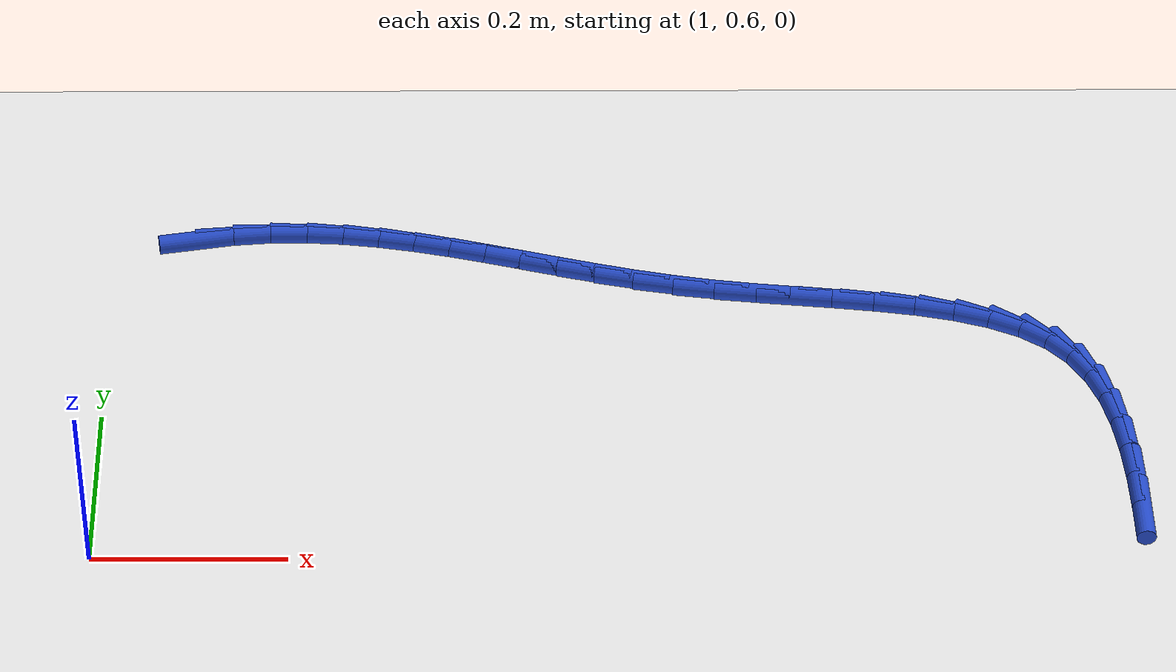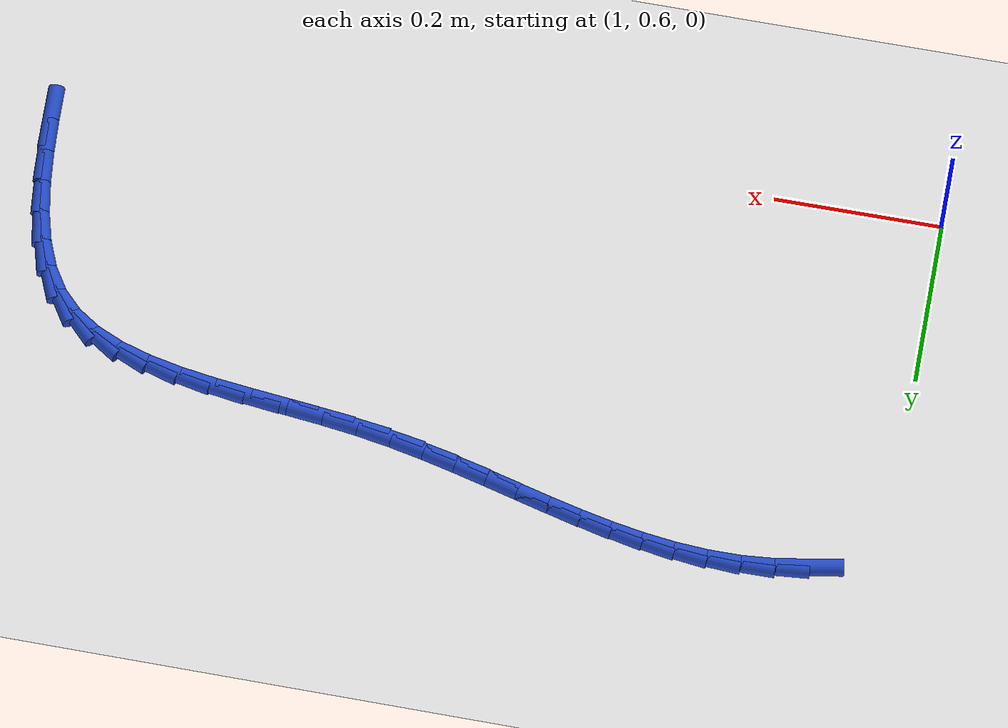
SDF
<sdf version="1.6">
 <world name="default">
  <model name="ground_plane">
   <static>1</static>
   <link name="link">
    <collision name="collision">
     <geometry><plane><normal>0 0 1</normal><size>100 100</size></plane></geometry>
     <surface><friction><ode><mu>100</mu><mu2>50</mu2></ode></friction></surface>
    </collision>
    <visual name="visual">
     <cast_shadows>0</cast_shadows>
     <geometry><plane><normal>0 0 1</normal><size>100 100</size></plane></geometry>
     <material>
      <script><uri>file://media/materials/scripts/gazebo.material</uri><name>Gazebo/WhiteGlow</name></script>
     </material>
    </visual>
   </link>
  </model>
  <model name="line">
   <link name="link_44">
    <pose>1.0845267703536634 1.0546039423712241 0.01 0 1.57 0.1686765028902553</pose>
    <collision name="collision">
     <geometry><cylinder><radius>0.01</radius><length>0.08</length></cylinder></geometry>
    </collision>
    <visual name="visual">
     <material>
      <script><name>Gazebo/Blue</name><uri>file://media/materials/scripts/gazebo.material</uri></script>
     </material>
     <geometry><cylinder><radius>0.01</radius><length>0.08</length></cylinder></geometry>
    </visual>
   </link>
   <link name="link_45">
    <pose>1.12316036006 1.061183035447751 0.01 0 1.57 0.08615382812635393</pose>
    <collision name="collision">
     <geometry><cylinder><radius>0.01</radius><length>0.08</length></cylinder></geometry>
    </collision>
    <visual name="visual">
     <material>
      <script><name>Gazebo/Blue</name><uri>file://media/materials/scripts/gazebo.material</uri></script>
     </material>
     <geometry><cylinder><radius>0.01</radius><length>0.08</length></cylinder></geometry>
    </visual>
   </link>
   <link name="link_46">
    <pose>1.16261064117979 1.0645902623882741 0.01 0 1.57 0.00502083160346573</pose>
    <collision name="collision">
     <geometry><cylinder><radius>0.01</radius><length>0.08</length></cylinder></geometry>
    </collision>
    <visual name="visual">
     <material>
      <script><name>Gazebo/Blue</name><uri>file://media/materials/scripts/gazebo.material</uri></script>
     </material>
     <geometry><cylinder><radius>0.01</radius><length>0.08</length></cylinder></geometry>
    </visual>
   </link>
   <link name="link_47">
    <pose>1.2022423870300716 1.0647892483824053 0.01 0 1.57 -0.06354605870823674</pose>
    <collision name="collision">
     <geometry><cylinder><radius>0.01</radius><length>0.08</length></cylinder></geometry>
    </collision>
    <visual name="visual">
     <material>
      <script><name>Gazebo/Blue</name><uri>file://media/materials/scripts/gazebo.material</uri></script>
     </material>
     <geometry><cylinder><radius>0.01</radius><length>0.08</length></cylinder></geometry>
    </visual>
   </link>
   <link name="link_48">
    <pose>1.2411630865288392 1.062312656853271 0.01 0 1.57 -0.12308139145691359</pose>
    <collision name="collision">
     <geometry><cylinder><radius>0.01</radius><length>0.08</length></cylinder></geometry>
    </collision>
    <visual name="visual">
     <material>
      <script><name>Gazebo/Blue</name><uri>file://media/materials/scripts/gazebo.material</uri></script>
     </material>
     <geometry><cylinder><radius>0.01</radius><length>0.08</length></cylinder></geometry>
    </visual>
   </link>
   <link name="link_49">
    <pose>1.2795118479128234 1.0575686580545207 0.01 0 1.57 -0.17241051413102854</pose>
    <collision name="collision">
     <geometry><cylinder><radius>0.01</radius><length>0.08</length></cylinder></geometry>
    </collision>
    <visual name="visual">
     <material>
      <script><name>Gazebo/Blue</name><uri>file://media/materials/scripts/gazebo.material</uri></script>
     </material>
     <geometry><cylinder><radius>0.01</radius><length>0.08</length></cylinder></geometry>
    </visual>
   </link>
   <link name="link_50">
    <pose>1.317488119043359 1.0509554931102754 0.01 0 1.57 -0.21067340956524688</pose>
    <collision name="collision">
     <geometry><cylinder><radius>0.01</radius><length>0.08</length></cylinder></geometry>
    </collision>
    <visual name="visual">
     <material>
      <script><name>Gazebo/Blue</name><uri>file://media/materials/scripts/gazebo.material</uri></script>
     </material>
     <geometry><cylinder><radius>0.01</radius><length>0.08</length></cylinder></geometry>
    </visual>
   </link>
   <link name="link_51">
    <pose>1.355291347781783 1.0428714031446573 0.01 0 1.57 -0.23748519735594778</pose>
    <collision name="collision">
     <geometry><cylinder><radius>0.01</radius><length>0.08</length></cylinder></geometry>
    </collision>
    <visual name="visual">
     <material>
      <script><name>Gazebo/Blue</name><uri>file://media/materials/scripts/gazebo.material</uri></script>
     </material>
     <geometry><cylinder><radius>0.01</radius><length>0.08</length></cylinder></geometry>
    </visual>
   </link>
   <link name="link_52">
    <pose>1.3931209819894317 1.0337146292817885 0.01 0 1.57 -0.2528116050552469</pose>
    <collision name="collision">
     <geometry><cylinder><radius>0.01</radius><length>0.08</length></cylinder></geometry>
    </collision>
    <visual name="visual">
     <material>
      <script><name>Gazebo/Blue</name><uri>file://media/materials/scripts/gazebo.material</uri></script>
     </material>
     <geometry><cylinder><radius>0.01</radius><length>0.08</length></cylinder></geometry>
    </visual>
   </link>
   <link name="link_53">
    <pose>1.4311764695276405 1.023883412645791 0.01 0 1.57 -0.25685933071088174</pose>
    <collision name="collision">
     <geometry><cylinder><radius>0.01</radius><length>0.08</length></cylinder></geometry>
    </collision>
    <visual name="visual">
     <material>
      <script><name>Gazebo/Blue</name><uri>file://media/materials/scripts/gazebo.material</uri></script>
     </material>
     <geometry><cylinder><radius>0.01</radius><length>0.08</length></cylinder></geometry>
    </visual>
   </link>
   <link name="link_54">
    <pose>1.469657258257746 1.013775994360786 0.01 0 1.57 -0.2500022965165465</pose>
    <collision name="collision">
     <geometry><cylinder><radius>0.01</radius><length>0.08</length></cylinder></geometry>
    </collision>
    <visual name="visual">
     <material>
      <script><name>Gazebo/Blue</name><uri>file://media/materials/scripts/gazebo.material</uri></script>
     </material>
     <geometry><cylinder><radius>0.01</radius><length>0.08</length></cylinder></geometry>
    </visual>
   </link>
   <link name="link_55">
    <pose>1.508762796041085 1.0037906155508962 0.01 0 1.57 -0.23274796626748584</pose>
    <collision name="collision">
     <geometry><cylinder><radius>0.01</radius><length>0.08</length></cylinder></geometry>
    </collision>
    <visual name="visual">
     <material>
      <script><name>Gazebo/Blue</name><uri>file://media/materials/scripts/gazebo.material</uri></script>
     </material>
     <geometry><cylinder><radius>0.01</radius><length>0.08</length></cylinder></geometry>
    </visual>
   </link>
   <link name="link_56">
    <pose>1.548692530738993 0.994325517340243 0.01 0 1.57 -0.20573756306394303</pose>
    <collision name="collision">
     <geometry><cylinder><radius>0.01</radius><length>0.08</length></cylinder></geometry>
    </collision>
    <visual name="visual">
     <material>
      <script><name>Gazebo/Blue</name><uri>file://media/materials/scripts/gazebo.material</uri></script>
     </material>
     <geometry><cylinder><radius>0.01</radius><length>0.08</length></cylinder></geometry>
    </visual>
   </link>
   <link name="link_57">
    <pose>1.589645910212806 0.9857789408529487 0.01 0 1.57 -0.16976822002471317</pose>
    <collision name="collision">
     <geometry><cylinder><radius>0.01</radius><length>0.08</length></cylinder></geometry>
    </collision>
    <visual name="visual">
     <material>
      <script><name>Gazebo/Blue</name><uri>file://media/materials/scripts/gazebo.material</uri></script>
     </material>
     <geometry><cylinder><radius>0.01</radius><length>0.08</length></cylinder></geometry>
    </visual>
   </link>
   <link name="link_58">
    <pose>1.6318223807164862 0.9785491252672874 0.01 0 1.57 -0.13084393198189373</pose>
    <collision name="collision">
     <geometry><cylinder><radius>0.01</radius><length>0.08</length></cylinder></geometry>
    </collision>
    <visual name="visual">
     <material>
      <script><name>Gazebo/Blue</name><uri>file://media/materials/scripts/gazebo.material</uri></script>
     </material>
     <geometry><cylinder><radius>0.01</radius><length>0.08</length></cylinder></geometry>
    </visual>
   </link>
   <link name="link_59">
    <pose>1.6752555157815856 0.972833508432283 0.01 0 1.57 -0.10743513473527333</pose>
    <collision name="collision">
     <geometry><cylinder><radius>0.01</radius><length>0.08</length></cylinder></geometry>
    </collision>
    <visual name="visual">
     <material>
      <script><name>Gazebo/Blue</name><uri>file://media/materials/scripts/gazebo.material</uri></script>
     </material>
     <geometry><cylinder><radius>0.01</radius><length>0.08</length></cylinder></geometry>
    </visual>
   </link>
   <link name="link_60">
    <pose>1.7193573492685708 0.9680771079658004 0.01 0 1.57 -0.10247079330258022</pose>
    <collision name="collision">
     <geometry><cylinder><radius>0.01</radius><length>0.08</length></cylinder></geometry>
    </collision>
    <visual name="visual">
     <material>
      <script><name>Gazebo/Blue</name><uri>file://media/materials/scripts/gazebo.material</uri></script>
     </material>
     <geometry><cylinder><radius>0.01</radius><length>0.08</length></cylinder></geometry>
    </visual>
   </link>
   <link name="link_61">
    <pose>1.7633943626774469 0.9635487394735153 0.01 0 1.57 -0.11584519909751555</pose>
    <collision name="collision">
     <geometry><cylinder><radius>0.01</radius><length>0.08</length></cylinder></geometry>
    </collision>
    <visual name="visual">
     <material>
      <script><name>Gazebo/Blue</name><uri>file://media/materials/scripts/gazebo.material</uri></script>
     </material>
     <geometry><cylinder><radius>0.01</radius><length>0.08</length></cylinder></geometry>
    </visual>
   </link>
   <link name="link_62">
    <pose>1.8066330375082216 0.9585172185611044 0.01 0 1.57 -0.14912056485801523</pose>
    <collision name="collision">
     <geometry><cylinder><radius>0.01</radius><length>0.08</length></cylinder></geometry>
    </collision>
    <visual name="visual">
     <material>
      <script><name>Gazebo/Blue</name><uri>file://media/materials/scripts/gazebo.material</uri></script>
     </material>
     <geometry><cylinder><radius>0.01</radius><length>0.08</length></cylinder></geometry>
    </visual>
   </link>
   <link name="link_63">
    <pose>1.848339855260902 0.9522513608342431 0.01 0 1.57 -0.2057455618452677</pose>
    <collision name="collision">
     <geometry><cylinder><radius>0.01</radius><length>0.08</length></cylinder></geometry>
    </collision>
    <visual name="visual">
     <material>
      <script><name>Gazebo/Blue</name><uri>file://media/materials/scripts/gazebo.material</uri></script>
     </material>
     <geometry><cylinder><radius>0.01</radius><length>0.08</length></cylinder></geometry>
    </visual>
   </link>
   <link name="link_64">
    <pose>1.8877812974354955 0.9440199818986081 0.01 0 1.57 -0.291338975356333</pose>
    <collision name="collision">
     <geometry><cylinder><radius>0.01</radius><length>0.08</length></cylinder></geometry>
    </collision>
    <visual name="visual">
     <material>
      <script><name>Gazebo/Blue</name><uri>file://media/materials/scripts/gazebo.material</uri></script>
     </material>
     <geometry><cylinder><radius>0.01</radius><length>0.08</length></cylinder></geometry>
    </visual>
   </link>
   <link name="link_65">
    <pose>1.9242238455320082 0.9330918973598753 0.01 0 1.57 -0.4135720012492433</pose>
    <collision name="collision">
     <geometry><cylinder><radius>0.01</radius><length>0.08</length></cylinder></geometry>
    </collision>
    <visual name="visual">
     <material>
      <script><name>Gazebo/Blue</name><uri>file://media/materials/scripts/gazebo.material</uri></script>
     </material>
     <geometry><cylinder><radius>0.01</radius><length>0.08</length></cylinder></geometry>
    </visual>
   </link>
   <link name="link_66">
    <pose>1.9569339810504482 0.9187359228237209 0.01 0 1.57 -0.5802560346704803</pose>
    <collision name="collision">
     <geometry><cylinder><radius>0.01</radius><length>0.08</length></cylinder></geometry>
    </collision>
    <visual name="visual">
     <material>
      <script><name>Gazebo/Blue</name><uri>file://media/materials/scripts/gazebo.material</uri></script>
     </material>
     <geometry><cylinder><radius>0.01</radius><length>0.08</length></cylinder></geometry>
    </visual>
   </link>
   <link name="link_67">
    <pose>1.9851781854908206 0.9002208738958205 0.01 0 1.57 -0.7906833655115915</pose>
    <collision name="collision">
     <geometry><cylinder><radius>0.01</radius><length>0.08</length></cylinder></geometry>
    </collision>
    <visual name="visual">
     <material>
      <script><name>Gazebo/Blue</name><uri>file://media/materials/scripts/gazebo.material</uri></script>
     </material>
     <geometry><cylinder><radius>0.01</radius><length>0.08</length></cylinder></geometry>
    </visual>
   </link>
   <link name="link_68">
    <pose>2.008282026737582 0.8768715158157272 0.01 0 1.57 -0.9997749384667465</pose>
    <collision name="collision">
     <geometry><cylinder><radius>0.01</radius><length>0.08</length></cylinder></geometry>
    </collision>
    <visual name="visual">
     <material>
      <script><name>Gazebo/Blue</name><uri>file://media/materials/scripts/gazebo.material</uri></script>
     </material>
     <geometry><cylinder><radius>0.01</radius><length>0.08</length></cylinder></geometry>
    </visual>
   </link>
   <link name="link_69">
    <pose>2.02634842205702 0.8487486956414175 0.01 0 1.57 -1.170355045484224</pose>
    <collision name="collision">
     <geometry><cylinder><radius>0.01</radius><length>0.08</length></cylinder></geometry>
    </collision>
    <visual name="visual">
     <material>
      <script><name>Gazebo/Blue</name><uri>file://media/materials/scripts/gazebo.material</uri></script>
     </material>
     <geometry><cylinder><radius>0.01</radius><length>0.08</length></cylinder></geometry>
    </visual>
   </link>
   <link name="link_70">
    <pose>2.040028399262602 0.8164322731395562 0.01 0 1.57 -1.3004057428306575</pose>
    <collision name="collision">
     <geometry><cylinder><radius>0.01</radius><length>0.08</length></cylinder></geometry>
    </collision>
    <visual name="visual">
     <material>
      <script><name>Gazebo/Blue</name><uri>file://media/materials/scripts/gazebo.material</uri></script>
     </material>
     <geometry><cylinder><radius>0.01</radius><length>0.08</length></cylinder></geometry>
    </visual>
   </link>
   <link name="link_71">
    <pose>2.0499844628483346 0.7805129754886541 0.01 0 1.57 -1.3955163949866203</pose>
    <collision name="collision">
     <geometry><cylinder><radius>0.01</radius><length>0.08</length></cylinder></geometry>
    </collision>
    <visual name="visual">
     <material>
      <script><name>Gazebo/Blue</name><uri>file://media/materials/scripts/gazebo.material</uri></script>
     </material>
     <geometry><cylinder><radius>0.01</radius><length>0.08</length></cylinder></geometry>
    </visual>
   </link>
   <link name="link_72">
    <pose>2.0568791173082235 0.741581529867222 0.01 0 1.57 -1.462504870447982</pose>
    <collision name="collision">
     <geometry><cylinder><radius>0.01</radius><length>0.08</length></cylinder></geometry>
    </collision>
    <visual name="visual">
     <material>
      <script><name>Gazebo/Blue</name><uri>file://media/materials/scripts/gazebo.material</uri></script>
     </material>
     <geometry><cylinder><radius>0.01</radius><length>0.08</length></cylinder></geometry>
    </visual>
   </link>
   <link name="link_73">
    <pose>2.0613748671362737 0.7002286634537707 0.01 0 1.57 -1.5069849270187068</pose>
    <collision name="collision">
     <geometry><cylinder><radius>0.01</radius><length>0.08</length></cylinder></geometry>
    </collision>
    <visual name="visual">
     <material>
      <script><name>Gazebo/Blue</name><uri>file://media/materials/scripts/gazebo.material</uri></script>
     </material>
     <geometry><cylinder><radius>0.01</radius><length>0.08</length></cylinder></geometry>
    </visual>
   </link>
   <link name="link_74">
    <pose>2.0641342168264925 0.6570451034268106 0.01 0 1.57 -1.5328739431264382</pose>
    <collision name="collision">
     <geometry><cylinder><radius>0.01</radius><length>0.08</length></cylinder></geometry>
    </collision>
    <visual name="visual">
     <material>
      <script><name>Gazebo/Blue</name><uri>file://media/materials/scripts/gazebo.material</uri></script>
     </material>
     <geometry><cylinder><radius>0.01</radius><length>0.08</length></cylinder></geometry>
    </visual>
   </link>
  </model>
 </world>
</sdf>
